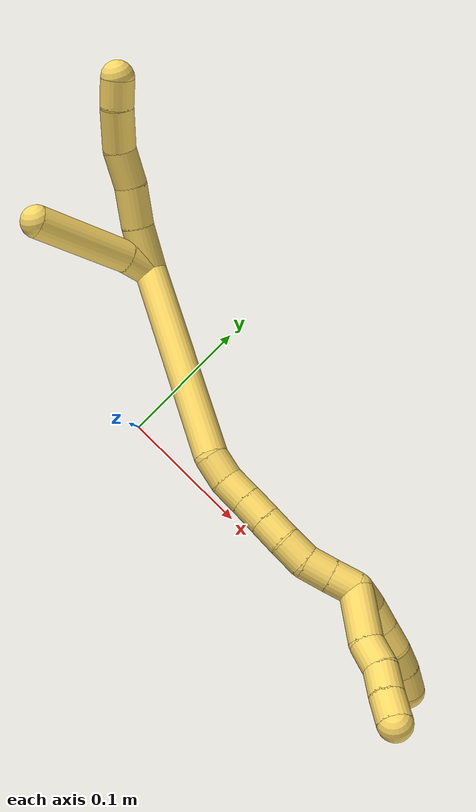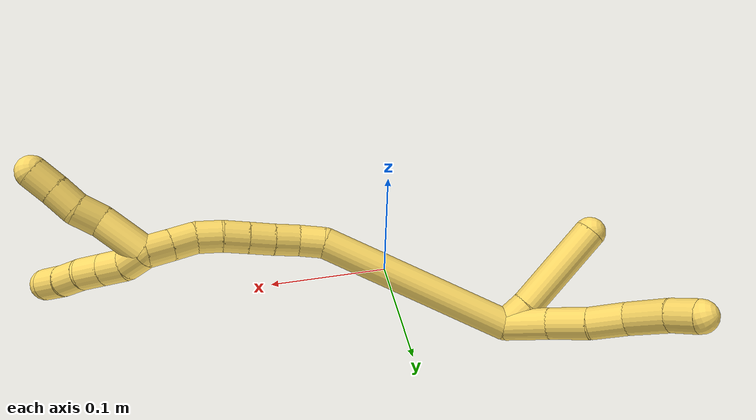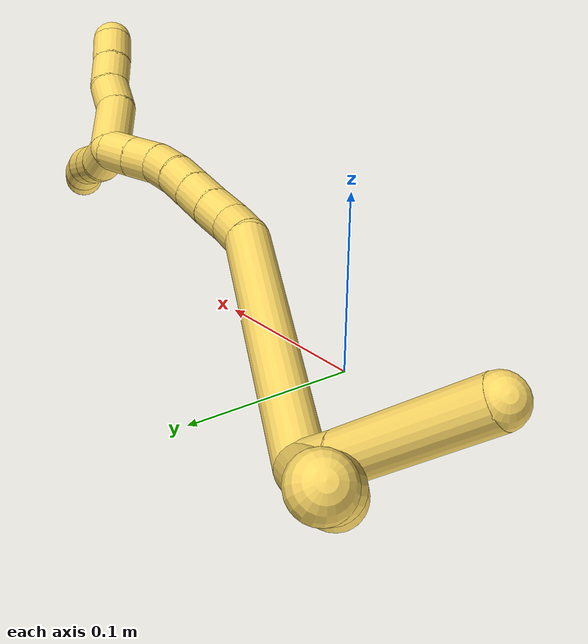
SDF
<sdf version="1.7">
 <world name="default">
  <model name="5">
   <static>0</static>
   <link name="5">
    <collision name="collision-cylinder-e_1_2_8">
     <pose>-0.005731 0.000268 -0.016967 -3.12583 -0.325719 3.04571</pose>
     <geometry><cylinder><radius>0.0125</radius><length>0.035821</length></cylinder></geometry>
     <surface>
      <friction><ode><mu>1.16</mu><mu2>1.16</mu2><slip1>0</slip1><slip2>0</slip2></ode></friction>
      <contact><ode><kp>1e+06</kp><kd>1</kd><max_vel>0</max_vel><min_depth>0.001</min_depth></ode></contact>
     </surface>
    </collision>
    <visual name="visual-cylinder-e_1_2_8">
     <pose>-0.005731 0.000268 -0.016967 -3.12583 -0.325719 3.04571</pose>
     <geometry><cylinder><radius>0.0125</radius><length>0.035821</length></cylinder></geometry>
     <material><ambient>1 0.858824 0.4 1</ambient></material>
    </visual>
    <collision name="collision-cylinder-e_2_8_9">
     <pose>-0.015381 -0.001043 -0.049268 3.03907 -0.24891 -2.3632</pose>
     <geometry><cylinder><radius>0.0125</radius><length>0.031811</length></cylinder></geometry>
     <surface>
      <friction><ode><mu>1.16</mu><mu2>1.16</mu2><slip1>0</slip1><slip2>0</slip2></ode></friction>
      <contact><ode><kp>1e+06</kp><kd>1</kd><max_vel>0</max_vel><min_depth>0.001</min_depth></ode></contact>
     </surface>
    </collision>
    <visual name="visual-cylinder-e_2_8_9">
     <pose>-0.015381 -0.001043 -0.049268 3.03907 -0.24891 -2.3632</pose>
     <geometry><cylinder><radius>0.0125</radius><length>0.031811</length></cylinder></geometry>
     <material><ambient>1 0.858824 0.4 1</ambient></material>
    </visual>
    <collision name="collision-cylinder-e_3_9_10">
     <pose>-0.022229 -0.002154 -0.078477 -3.10802 -0.207975 2.82262</pose>
     <geometry><cylinder><radius>0.0125</radius><length>0.028378</length></cylinder></geometry>
     <surface>
      <friction><ode><mu>1.16</mu><mu2>1.16</mu2><slip1>0</slip1><slip2>0</slip2></ode></friction>
      <contact><ode><kp>1e+06</kp><kd>1</kd><max_vel>0</max_vel><min_depth>0.001</min_depth></ode></contact>
     </surface>
    </collision>
    <visual name="visual-cylinder-e_3_9_10">
     <pose>-0.022229 -0.002154 -0.078477 -3.10802 -0.207975 2.82262</pose>
     <geometry><cylinder><radius>0.0125</radius><length>0.028378</length></cylinder></geometry>
     <material><ambient>1 0.858824 0.4 1</ambient></material>
    </visual>
    <collision name="collision-cylinder-e_4_10_11">
     <pose>-0.025969 -0.004954 -0.108251 2.93898 -0.049926 -0.481708</pose>
     <geometry><cylinder><radius>0.0125</radius><length>0.032501</length></cylinder></geometry>
     <surface>
      <friction><ode><mu>1.16</mu><mu2>1.16</mu2><slip1>0</slip1><slip2>0</slip2></ode></friction>
      <contact><ode><kp>1e+06</kp><kd>1</kd><max_vel>0</max_vel><min_depth>0.001</min_depth></ode></contact>
     </surface>
    </collision>
    <visual name="visual-cylinder-e_4_10_11">
     <pose>-0.025969 -0.004954 -0.108251 2.93898 -0.049926 -0.481708</pose>
     <geometry><cylinder><radius>0.0125</radius><length>0.032501</length></cylinder></geometry>
     <material><ambient>1 0.858824 0.4 1</ambient></material>
    </visual>
    <collision name="collision-cylinder-e_5_11_6">
     <pose>-0.028031 -0.011305 -0.134365 2.84838 -0.116629 -0.753003</pose>
     <geometry><cylinder><radius>0.0125</radius><length>0.021489</length></cylinder></geometry>
     <surface>
      <friction><ode><mu>1.16</mu><mu2>1.16</mu2><slip1>0</slip1><slip2>0</slip2></ode></friction>
      <contact><ode><kp>1e+06</kp><kd>1</kd><max_vel>0</max_vel><min_depth>0.001</min_depth></ode></contact>
     </surface>
    </collision>
    <visual name="visual-cylinder-e_5_11_6">
     <pose>-0.028031 -0.011305 -0.134365 2.84838 -0.116629 -0.753003</pose>
     <geometry><cylinder><radius>0.0125</radius><length>0.021489</length></cylinder></geometry>
     <material><ambient>1 0.858824 0.4 1</ambient></material>
    </visual>
    <collision name="collision-cylinder-e_1_2_12">
     <pose>0.000657 0.007307 -0.00891 -2.45476 0.056939 -0.158938</pose>
     <geometry><cylinder><radius>0.0125</radius><length>0.023084</length></cylinder></geometry>
     <surface>
      <friction><ode><mu>1.16</mu><mu2>1.16</mu2><slip1>0</slip1><slip2>0</slip2></ode></friction>
      <contact><ode><kp>1e+06</kp><kd>1</kd><max_vel>0</max_vel><min_depth>0.001</min_depth></ode></contact>
     </surface>
    </collision>
    <visual name="visual-cylinder-e_1_2_12">
     <pose>0.000657 0.007307 -0.00891 -2.45476 0.056939 -0.158938</pose>
     <geometry><cylinder><radius>0.0125</radius><length>0.023084</length></cylinder></geometry>
     <material><ambient>1 0.858824 0.4 1</ambient></material>
    </visual>
    <collision name="collision-cylinder-e_2_12_5">
     <pose>0.006442 0.041859 -0.044474 -2.3452 0.133739 -0.315745</pose>
     <geometry><cylinder><radius>0.0125</radius><length>0.076916</length></cylinder></geometry>
     <surface>
      <friction><ode><mu>1.16</mu><mu2>1.16</mu2><slip1>0</slip1><slip2>0</slip2></ode></friction>
      <contact><ode><kp>1e+06</kp><kd>1</kd><max_vel>0</max_vel><min_depth>0.001</min_depth></ode></contact>
     </surface>
    </collision>
    <visual name="visual-cylinder-e_2_12_5">
     <pose>0.006442 0.041859 -0.044474 -2.3452 0.133739 -0.315745</pose>
     <geometry><cylinder><radius>0.0125</radius><length>0.076916</length></cylinder></geometry>
     <material><ambient>1 0.858824 0.4 1</ambient></material>
    </visual>
    <collision name="collision-cylinder-e_1_2_13">
     <pose>0.068147 -0.004777 0.040473 0.117483 1.03183 0.066682</pose>
     <geometry><cylinder><radius>0.0125</radius><length>0.158807</length></cylinder></geometry>
     <surface>
      <friction><ode><mu>1.16</mu><mu2>1.16</mu2><slip1>0</slip1><slip2>0</slip2></ode></friction>
      <contact><ode><kp>1e+06</kp><kd>1</kd><max_vel>0</max_vel><min_depth>0.001</min_depth></ode></contact>
     </surface>
    </collision>
    <visual name="visual-cylinder-e_1_2_13">
     <pose>0.068147 -0.004777 0.040473 0.117483 1.03183 0.066682</pose>
     <geometry><cylinder><radius>0.0125</radius><length>0.158807</length></cylinder></geometry>
     <material><ambient>1 0.858824 0.4 1</ambient></material>
    </visual>
    <collision name="collision-cylinder-e_2_13_14">
     <pose>0.143326 -0.012725 0.087735 0.436943 0.753636 0.175265</pose>
     <geometry><cylinder><radius>0.0125</radius><length>0.020551</length></cylinder></geometry>
     <surface>
      <friction><ode><mu>1.16</mu><mu2>1.16</mu2><slip1>0</slip1><slip2>0</slip2></ode></friction>
      <contact><ode><kp>1e+06</kp><kd>1</kd><max_vel>0</max_vel><min_depth>0.001</min_depth></ode></contact>
     </surface>
    </collision>
    <visual name="visual-cylinder-e_2_13_14">
     <pose>0.143326 -0.012725 0.087735 0.436943 0.753636 0.175265</pose>
     <geometry><cylinder><radius>0.0125</radius><length>0.020551</length></cylinder></geometry>
     <material><ambient>1 0.858824 0.4 1</ambient></material>
    </visual>
    <collision name="collision-cylinder-e_3_14_15">
     <pose>0.157498 -0.020861 0.099639 0.770639 0.786208 0.333271</pose>
     <geometry><cylinder><radius>0.0125</radius><length>0.020181</length></cylinder></geometry>
     <surface>
      <friction><ode><mu>1.16</mu><mu2>1.16</mu2><slip1>0</slip1><slip2>0</slip2></ode></friction>
      <contact><ode><kp>1e+06</kp><kd>1</kd><max_vel>0</max_vel><min_depth>0.001</min_depth></ode></contact>
     </surface>
    </collision>
    <visual name="visual-cylinder-e_3_14_15">
     <pose>0.157498 -0.020861 0.099639 0.770639 0.786208 0.333271</pose>
     <geometry><cylinder><radius>0.0125</radius><length>0.020181</length></cylinder></geometry>
     <material><ambient>1 0.858824 0.4 1</ambient></material>
    </visual>
    <collision name="collision-cylinder-e_4_15_16">
     <pose>0.171978 -0.030546 0.109759 0.755932 0.817815 0.340778</pose>
     <geometry><cylinder><radius>0.0125</radius><length>0.020119</length></cylinder></geometry>
     <surface>
      <friction><ode><mu>1.16</mu><mu2>1.16</mu2><slip1>0</slip1><slip2>0</slip2></ode></friction>
      <contact><ode><kp>1e+06</kp><kd>1</kd><max_vel>0</max_vel><min_depth>0.001</min_depth></ode></contact>
     </surface>
    </collision>
    <visual name="visual-cylinder-e_4_15_16">
     <pose>0.171978 -0.030546 0.109759 0.755932 0.817815 0.340778</pose>
     <geometry><cylinder><radius>0.0125</radius><length>0.020119</length></cylinder></geometry>
     <material><ambient>1 0.858824 0.4 1</ambient></material>
    </visual>
    <collision name="collision-cylinder-e_5_16_17">
     <pose>0.186567 -0.039955 0.119814 0.748496 0.810585 0.333886</pose>
     <geometry><cylinder><radius>0.0125</radius><length>0.020005</length></cylinder></geometry>
     <surface>
      <friction><ode><mu>1.16</mu><mu2>1.16</mu2><slip1>0</slip1><slip2>0</slip2></ode></friction>
      <contact><ode><kp>1e+06</kp><kd>1</kd><max_vel>0</max_vel><min_depth>0.001</min_depth></ode></contact>
     </surface>
    </collision>
    <visual name="visual-cylinder-e_5_16_17">
     <pose>0.186567 -0.039955 0.119814 0.748496 0.810585 0.333886</pose>
     <geometry><cylinder><radius>0.0125</radius><length>0.020005</length></cylinder></geometry>
     <material><ambient>1 0.858824 0.4 1</ambient></material>
    </visual>
    <collision name="collision-cylinder-e_6_17_18">
     <pose>0.200215 -0.049726 0.130912 0.698689 0.680964 0.256699</pose>
     <geometry><cylinder><radius>0.0125</radius><length>0.020331</length></cylinder></geometry>
     <surface>
      <friction><ode><mu>1.16</mu><mu2>1.16</mu2><slip1>0</slip1><slip2>0</slip2></ode></friction>
      <contact><ode><kp>1e+06</kp><kd>1</kd><max_vel>0</max_vel><min_depth>0.001</min_depth></ode></contact>
     </surface>
    </collision>
    <visual name="visual-cylinder-e_6_17_18">
     <pose>0.200215 -0.049726 0.130912 0.698689 0.680964 0.256699</pose>
     <geometry><cylinder><radius>0.0125</radius><length>0.020331</length></cylinder></geometry>
     <material><ambient>1 0.858824 0.4 1</ambient></material>
    </visual>
    <collision name="collision-cylinder-e_7_18_19">
     <pose>0.21124 -0.062046 0.142082 0.955026 0.480738 0.252317</pose>
     <geometry><cylinder><radius>0.0125</radius><length>0.020004</length></cylinder></geometry>
     <surface>
      <friction><ode><mu>1.16</mu><mu2>1.16</mu2><slip1>0</slip1><slip2>0</slip2></ode></friction>
      <contact><ode><kp>1e+06</kp><kd>1</kd><max_vel>0</max_vel><min_depth>0.001</min_depth></ode></contact>
     </surface>
    </collision>
    <visual name="visual-cylinder-e_7_18_19">
     <pose>0.21124 -0.062046 0.142082 0.955026 0.480738 0.252317</pose>
     <geometry><cylinder><radius>0.0125</radius><length>0.020004</length></cylinder></geometry>
     <material><ambient>1 0.858824 0.4 1</ambient></material>
    </visual>
    <collision name="collision-cylinder-e_8_19_1">
     <pose>0.22065 -0.076666 0.151963 0.9981 0.498853 0.275929</pose>
     <geometry><cylinder><radius>0.0125</radius><length>0.020003</length></cylinder></geometry>
     <surface>
      <friction><ode><mu>1.16</mu><mu2>1.16</mu2><slip1>0</slip1><slip2>0</slip2></ode></friction>
      <contact><ode><kp>1e+06</kp><kd>1</kd><max_vel>0</max_vel><min_depth>0.001</min_depth></ode></contact>
     </surface>
    </collision>
    <visual name="visual-cylinder-e_8_19_1">
     <pose>0.22065 -0.076666 0.151963 0.9981 0.498853 0.275929</pose>
     <geometry><cylinder><radius>0.0125</radius><length>0.020003</length></cylinder></geometry>
     <material><ambient>1 0.858824 0.4 1</ambient></material>
    </visual>
    <collision name="collision-cylinder-e_1_1_20">
     <pose>0.22562 -0.087 0.166275 0.299751 0.018483 0.002791</pose>
     <geometry><cylinder><radius>0.0125</radius><length>0.02</length></cylinder></geometry>
     <surface>
      <friction><ode><mu>1.16</mu><mu2>1.16</mu2><slip1>0</slip1><slip2>0</slip2></ode></friction>
      <contact><ode><kp>1e+06</kp><kd>1</kd><max_vel>0</max_vel><min_depth>0.001</min_depth></ode></contact>
     </surface>
    </collision>
    <visual name="visual-cylinder-e_1_1_20">
     <pose>0.22562 -0.087 0.166275 0.299751 0.018483 0.002791</pose>
     <geometry><cylinder><radius>0.0125</radius><length>0.02</length></cylinder></geometry>
     <material><ambient>1 0.858824 0.4 1</ambient></material>
    </visual>
    <collision name="collision-cylinder-e_2_20_21">
     <pose>0.22922 -0.092452 0.184888 0.269164 0.348501 0.047662</pose>
     <geometry><cylinder><radius>0.0125</radius><length>0.02</length></cylinder></geometry>
     <surface>
      <friction><ode><mu>1.16</mu><mu2>1.16</mu2><slip1>0</slip1><slip2>0</slip2></ode></friction>
      <contact><ode><kp>1e+06</kp><kd>1</kd><max_vel>0</max_vel><min_depth>0.001</min_depth></ode></contact>
     </surface>
    </collision>
    <visual name="visual-cylinder-e_2_20_21">
     <pose>0.22922 -0.092452 0.184888 0.269164 0.348501 0.047662</pose>
     <geometry><cylinder><radius>0.0125</radius><length>0.02</length></cylinder></geometry>
     <material><ambient>1 0.858824 0.4 1</ambient></material>
    </visual>
    <collision name="collision-cylinder-e_3_21_22">
     <pose>0.236112 -0.097549 0.202957 0.280749 0.35515 0.050707</pose>
     <geometry><cylinder><radius>0.0125</radius><length>0.02</length></cylinder></geometry>
     <surface>
      <friction><ode><mu>1.16</mu><mu2>1.16</mu2><slip1>0</slip1><slip2>0</slip2></ode></friction>
      <contact><ode><kp>1e+06</kp><kd>1</kd><max_vel>0</max_vel><min_depth>0.001</min_depth></ode></contact>
     </surface>
    </collision>
    <visual name="visual-cylinder-e_3_21_22">
     <pose>0.236112 -0.097549 0.202957 0.280749 0.35515 0.050707</pose>
     <geometry><cylinder><radius>0.0125</radius><length>0.02</length></cylinder></geometry>
     <material><ambient>1 0.858824 0.4 1</ambient></material>
    </visual>
    <collision name="collision-cylinder-e_4_22_23">
     <pose>0.241392 -0.101774 0.221667 0.166175 0.181263 0.015137</pose>
     <geometry><cylinder><radius>0.0125</radius><length>0.02</length></cylinder></geometry>
     <surface>
      <friction><ode><mu>1.16</mu><mu2>1.16</mu2><slip1>0</slip1><slip2>0</slip2></ode></friction>
      <contact><ode><kp>1e+06</kp><kd>1</kd><max_vel>0</max_vel><min_depth>0.001</min_depth></ode></contact>
     </surface>
    </collision>
    <visual name="visual-cylinder-e_4_22_23">
     <pose>0.241392 -0.101774 0.221667 0.166175 0.181263 0.015137</pose>
     <geometry><cylinder><radius>0.0125</radius><length>0.02</length></cylinder></geometry>
     <material><ambient>1 0.858824 0.4 1</ambient></material>
    </visual>
    <collision name="collision-cylinder-e_5_23_4">
     <pose>0.245521 -0.10381 0.241085 0.042023 0.234758 0.004956</pose>
     <geometry><cylinder><radius>0.0125</radius><length>0.02</length></cylinder></geometry>
     <surface>
      <friction><ode><mu>1.16</mu><mu2>1.16</mu2><slip1>0</slip1><slip2>0</slip2></ode></friction>
      <contact><ode><kp>1e+06</kp><kd>1</kd><max_vel>0</max_vel><min_depth>0.001</min_depth></ode></contact>
     </surface>
    </collision>
    <visual name="visual-cylinder-e_5_23_4">
     <pose>0.245521 -0.10381 0.241085 0.042023 0.234758 0.004956</pose>
     <geometry><cylinder><radius>0.0125</radius><length>0.02</length></cylinder></geometry>
     <material><ambient>1 0.858824 0.4 1</ambient></material>
    </visual>
    <collision name="collision-cylinder-e_1_1_24">
     <pose>0.243332 -0.082186 0.164447 -0.236524 1.15296 -0.154191</pose>
     <geometry><cylinder><radius>0.0125</radius><length>0.039162</length></cylinder></geometry>
     <surface>
      <friction><ode><mu>1.16</mu><mu2>1.16</mu2><slip1>0</slip1><slip2>0</slip2></ode></friction>
      <contact><ode><kp>1e+06</kp><kd>1</kd><max_vel>0</max_vel><min_depth>0.001</min_depth></ode></contact>
     </surface>
    </collision>
    <visual name="visual-cylinder-e_1_1_24">
     <pose>0.243332 -0.082186 0.164447 -0.236524 1.15296 -0.154191</pose>
     <geometry><cylinder><radius>0.0125</radius><length>0.039162</length></cylinder></geometry>
     <material><ambient>1 0.858824 0.4 1</ambient></material>
    </visual>
    <collision name="collision-cylinder-e_2_24_25">
     <pose>0.270905 -0.082409 0.175043 0.627987 1.21939 0.446085</pose>
     <geometry><cylinder><radius>0.0125</radius><length>0.020614</length></cylinder></geometry>
     <surface>
      <friction><ode><mu>1.16</mu><mu2>1.16</mu2><slip1>0</slip1><slip2>0</slip2></ode></friction>
      <contact><ode><kp>1e+06</kp><kd>1</kd><max_vel>0</max_vel><min_depth>0.001</min_depth></ode></contact>
     </surface>
    </collision>
    <visual name="visual-cylinder-e_2_24_25">
     <pose>0.270905 -0.082409 0.175043 0.627987 1.21939 0.446085</pose>
     <geometry><cylinder><radius>0.0125</radius><length>0.020614</length></cylinder></geometry>
     <material><ambient>1 0.858824 0.4 1</ambient></material>
    </visual>
    <collision name="collision-cylinder-e_3_25_26">
     <pose>0.290384 -0.083711 0.180007 -0.357701 1.34662 -0.286429</pose>
     <geometry><cylinder><radius>0.0125</radius><length>0.020105</length></cylinder></geometry>
     <surface>
      <friction><ode><mu>1.16</mu><mu2>1.16</mu2><slip1>0</slip1><slip2>0</slip2></ode></friction>
      <contact><ode><kp>1e+06</kp><kd>1</kd><max_vel>0</max_vel><min_depth>0.001</min_depth></ode></contact>
     </surface>
    </collision>
    <visual name="visual-cylinder-e_3_25_26">
     <pose>0.290384 -0.083711 0.180007 -0.357701 1.34662 -0.286429</pose>
     <geometry><cylinder><radius>0.0125</radius><length>0.020105</length></cylinder></geometry>
     <material><ambient>1 0.858824 0.4 1</ambient></material>
    </visual>
    <collision name="collision-cylinder-e_4_26_3">
     <pose>0.310002 -0.082731 0.184283 -0.090194 1.35115 -0.072297</pose>
     <geometry><cylinder><radius>0.0125</radius><length>0.020118</length></cylinder></geometry>
     <surface>
      <friction><ode><mu>1.16</mu><mu2>1.16</mu2><slip1>0</slip1><slip2>0</slip2></ode></friction>
      <contact><ode><kp>1e+06</kp><kd>1</kd><max_vel>0</max_vel><min_depth>0.001</min_depth></ode></contact>
     </surface>
    </collision>
    <visual name="visual-cylinder-e_4_26_3">
     <pose>0.310002 -0.082731 0.184283 -0.090194 1.35115 -0.072297</pose>
     <geometry><cylinder><radius>0.0125</radius><length>0.020118</length></cylinder></geometry>
     <material><ambient>1 0.858824 0.4 1</ambient></material>
    </visual>
    <collision name="collision-sphere-3">
     <pose>0.31982 -0.082533 0.186466 0 -0 0</pose>
     <geometry><sphere><radius>0.0125</radius></sphere></geometry>
     <surface>
      <friction><ode><mu>1.16</mu><mu2>1.16</mu2><slip1>0</slip1><slip2>0</slip2></ode></friction>
      <contact><ode><kp>1e+06</kp><kd>1</kd><max_vel>0</max_vel><min_depth>0.001</min_depth></ode></contact>
     </surface>
    </collision>
    <visual name="visual-sphere-3">
     <pose>0.31982 -0.082533 0.186466 0 -0 0</pose>
     <geometry><sphere><radius>0.0125</radius></sphere></geometry>
     <material><ambient>1 0.858824 0.4 1</ambient></material>
    </visual>
    <collision name="collision-sphere-26">
     <pose>0.300185 -0.082928 0.1821 0 -0 0</pose>
     <geometry><sphere><radius>0.0125</radius></sphere></geometry>
     <surface>
      <friction><ode><mu>1.16</mu><mu2>1.16</mu2><slip1>0</slip1><slip2>0</slip2></ode></friction>
      <contact><ode><kp>1e+06</kp><kd>1</kd><max_vel>0</max_vel><min_depth>0.001</min_depth></ode></contact>
     </surface>
    </collision>
    <visual name="visual-sphere-26">
     <pose>0.300185 -0.082928 0.1821 0 -0 0</pose>
     <geometry><sphere><radius>0.0125</radius></sphere></geometry>
     <material><ambient>1 0.858824 0.4 1</ambient></material>
    </visual>
    <collision name="collision-sphere-25">
     <pose>0.280582 -0.084493 0.177914 0 -0 0</pose>
     <geometry><sphere><radius>0.0125</radius></sphere></geometry>
     <surface>
      <friction><ode><mu>1.16</mu><mu2>1.16</mu2><slip1>0</slip1><slip2>0</slip2></ode></friction>
      <contact><ode><kp>1e+06</kp><kd>1</kd><max_vel>0</max_vel><min_depth>0.001</min_depth></ode></contact>
     </surface>
    </collision>
    <visual name="visual-sphere-25">
     <pose>0.280582 -0.084493 0.177914 0 -0 0</pose>
     <geometry><sphere><radius>0.0125</radius></sphere></geometry>
     <material><ambient>1 0.858824 0.4 1</ambient></material>
    </visual>
    <collision name="collision-sphere-24">
     <pose>0.261228 -0.080324 0.172172 0 -0 0</pose>
     <geometry><sphere><radius>0.0125</radius></sphere></geometry>
     <surface>
      <friction><ode><mu>1.16</mu><mu2>1.16</mu2><slip1>0</slip1><slip2>0</slip2></ode></friction>
      <contact><ode><kp>1e+06</kp><kd>1</kd><max_vel>0</max_vel><min_depth>0.001</min_depth></ode></contact>
     </surface>
    </collision>
    <visual name="visual-sphere-24">
     <pose>0.261228 -0.080324 0.172172 0 -0 0</pose>
     <geometry><sphere><radius>0.0125</radius></sphere></geometry>
     <material><ambient>1 0.858824 0.4 1</ambient></material>
    </visual>
    <collision name="collision-sphere-4">
     <pose>0.247847 -0.104218 0.250802 0 -0 0</pose>
     <geometry><sphere><radius>0.0125</radius></sphere></geometry>
     <surface>
      <friction><ode><mu>1.16</mu><mu2>1.16</mu2><slip1>0</slip1><slip2>0</slip2></ode></friction>
      <contact><ode><kp>1e+06</kp><kd>1</kd><max_vel>0</max_vel><min_depth>0.001</min_depth></ode></contact>
     </surface>
    </collision>
    <visual name="visual-sphere-4">
     <pose>0.247847 -0.104218 0.250802 0 -0 0</pose>
     <geometry><sphere><radius>0.0125</radius></sphere></geometry>
     <material><ambient>1 0.858824 0.4 1</ambient></material>
    </visual>
    <collision name="collision-sphere-23">
     <pose>0.243194 -0.103401 0.231368 0 -0 0</pose>
     <geometry><sphere><radius>0.0125</radius></sphere></geometry>
     <surface>
      <friction><ode><mu>1.16</mu><mu2>1.16</mu2><slip1>0</slip1><slip2>0</slip2></ode></friction>
      <contact><ode><kp>1e+06</kp><kd>1</kd><max_vel>0</max_vel><min_depth>0.001</min_depth></ode></contact>
     </surface>
    </collision>
    <visual name="visual-sphere-23">
     <pose>0.243194 -0.103401 0.231368 0 -0 0</pose>
     <geometry><sphere><radius>0.0125</radius></sphere></geometry>
     <material><ambient>1 0.858824 0.4 1</ambient></material>
    </visual>
    <collision name="collision-sphere-22">
     <pose>0.239589 -0.100147 0.211966 0 -0 0</pose>
     <geometry><sphere><radius>0.0125</radius></sphere></geometry>
     <surface>
      <friction><ode><mu>1.16</mu><mu2>1.16</mu2><slip1>0</slip1><slip2>0</slip2></ode></friction>
      <contact><ode><kp>1e+06</kp><kd>1</kd><max_vel>0</max_vel><min_depth>0.001</min_depth></ode></contact>
     </surface>
    </collision>
    <visual name="visual-sphere-22">
     <pose>0.239589 -0.100147 0.211966 0 -0 0</pose>
     <geometry><sphere><radius>0.0125</radius></sphere></geometry>
     <material><ambient>1 0.858824 0.4 1</ambient></material>
    </visual>
    <collision name="collision-sphere-21">
     <pose>0.232634 -0.094951 0.193949 0 -0 0</pose>
     <geometry><sphere><radius>0.0125</radius></sphere></geometry>
     <surface>
      <friction><ode><mu>1.16</mu><mu2>1.16</mu2><slip1>0</slip1><slip2>0</slip2></ode></friction>
      <contact><ode><kp>1e+06</kp><kd>1</kd><max_vel>0</max_vel><min_depth>0.001</min_depth></ode></contact>
     </surface>
    </collision>
    <visual name="visual-sphere-21">
     <pose>0.232634 -0.094951 0.193949 0 -0 0</pose>
     <geometry><sphere><radius>0.0125</radius></sphere></geometry>
     <material><ambient>1 0.858824 0.4 1</ambient></material>
    </visual>
    <collision name="collision-sphere-20">
     <pose>0.225805 -0.089953 0.175828 0 -0 0</pose>
     <geometry><sphere><radius>0.0125</radius></sphere></geometry>
     <surface>
      <friction><ode><mu>1.16</mu><mu2>1.16</mu2><slip1>0</slip1><slip2>0</slip2></ode></friction>
      <contact><ode><kp>1e+06</kp><kd>1</kd><max_vel>0</max_vel><min_depth>0.001</min_depth></ode></contact>
     </surface>
    </collision>
    <visual name="visual-sphere-20">
     <pose>0.225805 -0.089953 0.175828 0 -0 0</pose>
     <geometry><sphere><radius>0.0125</radius></sphere></geometry>
     <material><ambient>1 0.858824 0.4 1</ambient></material>
    </visual>
    <collision name="collision-sphere-6">
     <pose>-0.029281 -0.014389 -0.144582 0 -0 0</pose>
     <geometry><sphere><radius>0.0125</radius></sphere></geometry>
     <surface>
      <friction><ode><mu>1.16</mu><mu2>1.16</mu2><slip1>0</slip1><slip2>0</slip2></ode></friction>
      <contact><ode><kp>1e+06</kp><kd>1</kd><max_vel>0</max_vel><min_depth>0.001</min_depth></ode></contact>
     </surface>
    </collision>
    <visual name="visual-sphere-6">
     <pose>-0.029281 -0.014389 -0.144582 0 -0 0</pose>
     <geometry><sphere><radius>0.0125</radius></sphere></geometry>
     <material><ambient>1 0.858824 0.4 1</ambient></material>
    </visual>
    <collision name="collision-sphere-11">
     <pose>-0.02678 -0.00822 -0.124149 0 -0 0</pose>
     <geometry><sphere><radius>0.0125</radius></sphere></geometry>
     <surface>
      <friction><ode><mu>1.16</mu><mu2>1.16</mu2><slip1>0</slip1><slip2>0</slip2></ode></friction>
      <contact><ode><kp>1e+06</kp><kd>1</kd><max_vel>0</max_vel><min_depth>0.001</min_depth></ode></contact>
     </surface>
    </collision>
    <visual name="visual-sphere-11">
     <pose>-0.02678 -0.00822 -0.124149 0 -0 0</pose>
     <geometry><sphere><radius>0.0125</radius></sphere></geometry>
     <material><ambient>1 0.858824 0.4 1</ambient></material>
    </visual>
    <collision name="collision-sphere-10">
     <pose>-0.025158 -0.001688 -0.092353 0 -0 0</pose>
     <geometry><sphere><radius>0.0125</radius></sphere></geometry>
     <surface>
      <friction><ode><mu>1.16</mu><mu2>1.16</mu2><slip1>0</slip1><slip2>0</slip2></ode></friction>
      <contact><ode><kp>1e+06</kp><kd>1</kd><max_vel>0</max_vel><min_depth>0.001</min_depth></ode></contact>
     </surface>
    </collision>
    <visual name="visual-sphere-10">
     <pose>-0.025158 -0.001688 -0.092353 0 -0 0</pose>
     <geometry><sphere><radius>0.0125</radius></sphere></geometry>
     <material><ambient>1 0.858824 0.4 1</ambient></material>
    </visual>
    <collision name="collision-sphere-9">
     <pose>-0.019299 -0.00262 -0.064602 0 -0 0</pose>
     <geometry><sphere><radius>0.0125</radius></sphere></geometry>
     <surface>
      <friction><ode><mu>1.16</mu><mu2>1.16</mu2><slip1>0</slip1><slip2>0</slip2></ode></friction>
      <contact><ode><kp>1e+06</kp><kd>1</kd><max_vel>0</max_vel><min_depth>0.001</min_depth></ode></contact>
     </surface>
    </collision>
    <visual name="visual-sphere-9">
     <pose>-0.019299 -0.00262 -0.064602 0 -0 0</pose>
     <geometry><sphere><radius>0.0125</radius></sphere></geometry>
     <material><ambient>1 0.858824 0.4 1</ambient></material>
    </visual>
    <collision name="collision-sphere-2">
     <geometry><sphere><radius>0.0125</radius></sphere></geometry>
     <surface>
      <friction><ode><mu>1.16</mu><mu2>1.16</mu2><slip1>0</slip1><slip2>0</slip2></ode></friction>
      <contact><ode><kp>1e+06</kp><kd>1</kd><max_vel>0</max_vel><min_depth>0.001</min_depth></ode></contact>
     </surface>
    </collision>
    <visual name="visual-sphere-2">
     <geometry><sphere><radius>0.0125</radius></sphere></geometry>
     <material><ambient>1 0.858824 0.4 1</ambient></material>
    </visual>
    <collision name="collision-sphere-19">
     <pose>0.215865 -0.069285 0.147204 0 -0 0</pose>
     <geometry><sphere><radius>0.0125</radius></sphere></geometry>
     <surface>
      <friction><ode><mu>1.16</mu><mu2>1.16</mu2><slip1>0</slip1><slip2>0</slip2></ode></friction>
      <contact><ode><kp>1e+06</kp><kd>1</kd><max_vel>0</max_vel><min_depth>0.001</min_depth></ode></contact>
     </surface>
    </collision>
    <visual name="visual-sphere-19">
     <pose>0.215865 -0.069285 0.147204 0 -0 0</pose>
     <geometry><sphere><radius>0.0125</radius></sphere></geometry>
     <material><ambient>1 0.858824 0.4 1</ambient></material>
    </visual>
    <collision name="collision-sphere-8">
     <pose>-0.011462 0.000535 -0.033933 0 -0 0</pose>
     <geometry><sphere><radius>0.0125</radius></sphere></geometry>
     <surface>
      <friction><ode><mu>1.16</mu><mu2>1.16</mu2><slip1>0</slip1><slip2>0</slip2></ode></friction>
      <contact><ode><kp>1e+06</kp><kd>1</kd><max_vel>0</max_vel><min_depth>0.001</min_depth></ode></contact>
     </surface>
    </collision>
    <visual name="visual-sphere-8">
     <pose>-0.011462 0.000535 -0.033933 0 -0 0</pose>
     <geometry><sphere><radius>0.0125</radius></sphere></geometry>
     <material><ambient>1 0.858824 0.4 1</ambient></material>
    </visual>
    <collision name="collision-sphere-12">
     <pose>0.001314 0.014613 -0.017821 0 -0 0</pose>
     <geometry><sphere><radius>0.0125</radius></sphere></geometry>
     <surface>
      <friction><ode><mu>1.16</mu><mu2>1.16</mu2><slip1>0</slip1><slip2>0</slip2></ode></friction>
      <contact><ode><kp>1e+06</kp><kd>1</kd><max_vel>0</max_vel><min_depth>0.001</min_depth></ode></contact>
     </surface>
    </collision>
    <visual name="visual-sphere-12">
     <pose>0.001314 0.014613 -0.017821 0 -0 0</pose>
     <geometry><sphere><radius>0.0125</radius></sphere></geometry>
     <material><ambient>1 0.858824 0.4 1</ambient></material>
    </visual>
    <collision name="collision-sphere-5">
     <pose>0.01157 0.069105 -0.071127 0 -0 0</pose>
     <geometry><sphere><radius>0.0125</radius></sphere></geometry>
     <surface>
      <friction><ode><mu>1.16</mu><mu2>1.16</mu2><slip1>0</slip1><slip2>0</slip2></ode></friction>
      <contact><ode><kp>1e+06</kp><kd>1</kd><max_vel>0</max_vel><min_depth>0.001</min_depth></ode></contact>
     </surface>
    </collision>
    <visual name="visual-sphere-5">
     <pose>0.01157 0.069105 -0.071127 0 -0 0</pose>
     <geometry><sphere><radius>0.0125</radius></sphere></geometry>
     <material><ambient>1 0.858824 0.4 1</ambient></material>
    </visual>
    <collision name="collision-sphere-13">
     <pose>0.136294 -0.009554 0.080946 0 -0 0</pose>
     <geometry><sphere><radius>0.0125</radius></sphere></geometry>
     <surface>
      <friction><ode><mu>1.16</mu><mu2>1.16</mu2><slip1>0</slip1><slip2>0</slip2></ode></friction>
      <contact><ode><kp>1e+06</kp><kd>1</kd><max_vel>0</max_vel><min_depth>0.001</min_depth></ode></contact>
     </surface>
    </collision>
    <visual name="visual-sphere-13">
     <pose>0.136294 -0.009554 0.080946 0 -0 0</pose>
     <geometry><sphere><radius>0.0125</radius></sphere></geometry>
     <material><ambient>1 0.858824 0.4 1</ambient></material>
    </visual>
    <collision name="collision-sphere-14">
     <pose>0.150357 -0.015895 0.094524 0 -0 0</pose>
     <geometry><sphere><radius>0.0125</radius></sphere></geometry>
     <surface>
      <friction><ode><mu>1.16</mu><mu2>1.16</mu2><slip1>0</slip1><slip2>0</slip2></ode></friction>
      <contact><ode><kp>1e+06</kp><kd>1</kd><max_vel>0</max_vel><min_depth>0.001</min_depth></ode></contact>
     </surface>
    </collision>
    <visual name="visual-sphere-14">
     <pose>0.150357 -0.015895 0.094524 0 -0 0</pose>
     <geometry><sphere><radius>0.0125</radius></sphere></geometry>
     <material><ambient>1 0.858824 0.4 1</ambient></material>
    </visual>
    <collision name="collision-sphere-15">
     <pose>0.164638 -0.025827 0.104754 0 -0 0</pose>
     <geometry><sphere><radius>0.0125</radius></sphere></geometry>
     <surface>
      <friction><ode><mu>1.16</mu><mu2>1.16</mu2><slip1>0</slip1><slip2>0</slip2></ode></friction>
      <contact><ode><kp>1e+06</kp><kd>1</kd><max_vel>0</max_vel><min_depth>0.001</min_depth></ode></contact>
     </surface>
    </collision>
    <visual name="visual-sphere-15">
     <pose>0.164638 -0.025827 0.104754 0 -0 0</pose>
     <geometry><sphere><radius>0.0125</radius></sphere></geometry>
     <material><ambient>1 0.858824 0.4 1</ambient></material>
    </visual>
    <collision name="collision-sphere-16">
     <pose>0.179318 -0.035265 0.114764 0 -0 0</pose>
     <geometry><sphere><radius>0.0125</radius></sphere></geometry>
     <surface>
      <friction><ode><mu>1.16</mu><mu2>1.16</mu2><slip1>0</slip1><slip2>0</slip2></ode></friction>
      <contact><ode><kp>1e+06</kp><kd>1</kd><max_vel>0</max_vel><min_depth>0.001</min_depth></ode></contact>
     </surface>
    </collision>
    <visual name="visual-sphere-16">
     <pose>0.179318 -0.035265 0.114764 0 -0 0</pose>
     <geometry><sphere><radius>0.0125</radius></sphere></geometry>
     <material><ambient>1 0.858824 0.4 1</ambient></material>
    </visual>
    <collision name="collision-sphere-17">
     <pose>0.193815 -0.044646 0.124865 0 -0 0</pose>
     <geometry><sphere><radius>0.0125</radius></sphere></geometry>
     <surface>
      <friction><ode><mu>1.16</mu><mu2>1.16</mu2><slip1>0</slip1><slip2>0</slip2></ode></friction>
      <contact><ode><kp>1e+06</kp><kd>1</kd><max_vel>0</max_vel><min_depth>0.001</min_depth></ode></contact>
     </surface>
    </collision>
    <visual name="visual-sphere-17">
     <pose>0.193815 -0.044646 0.124865 0 -0 0</pose>
     <geometry><sphere><radius>0.0125</radius></sphere></geometry>
     <material><ambient>1 0.858824 0.4 1</ambient></material>
    </visual>
    <collision name="collision-sphere-18">
     <pose>0.206615 -0.054806 0.13696 0 -0 0</pose>
     <geometry><sphere><radius>0.0125</radius></sphere></geometry>
     <surface>
      <friction><ode><mu>1.16</mu><mu2>1.16</mu2><slip1>0</slip1><slip2>0</slip2></ode></friction>
      <contact><ode><kp>1e+06</kp><kd>1</kd><max_vel>0</max_vel><min_depth>0.001</min_depth></ode></contact>
     </surface>
    </collision>
    <visual name="visual-sphere-18">
     <pose>0.206615 -0.054806 0.13696 0 -0 0</pose>
     <geometry><sphere><radius>0.0125</radius></sphere></geometry>
     <material><ambient>1 0.858824 0.4 1</ambient></material>
    </visual>
    <collision name="collision-sphere-1">
     <pose>0.225435 -0.084048 0.156723 0 -0 0</pose>
     <geometry><sphere><radius>0.0125</radius></sphere></geometry>
     <surface>
      <friction><ode><mu>1.16</mu><mu2>1.16</mu2><slip1>0</slip1><slip2>0</slip2></ode></friction>
      <contact><ode><kp>1e+06</kp><kd>1</kd><max_vel>0</max_vel><min_depth>0.001</min_depth></ode></contact>
     </surface>
    </collision>
    <visual name="visual-sphere-1">
     <pose>0.225435 -0.084048 0.156723 0 -0 0</pose>
     <geometry><sphere><radius>0.0125</radius></sphere></geometry>
     <material><ambient>1 0.858824 0.4 1</ambient></material>
    </visual>
    <inertial>
     <pose>0.113778 -0.028877 0.062224 0 -0 0</pose>
     <mass>0.75</mass>
     <inertia>
      <ixx>0.000249</ixx>
      <ixy>0</ixy>
      <ixz>0</ixz>
      <iyy>0.000337</iyy>
      <iyz>0</iyz>
      <izz>-0.000309</izz>
     </inertia>
    </inertial>
   </link>
   <pose>-0.077704 0.092139 0.011879 -3.12454 -0.862237 -0.5482</pose>
  </model>
 </world>
</sdf>
